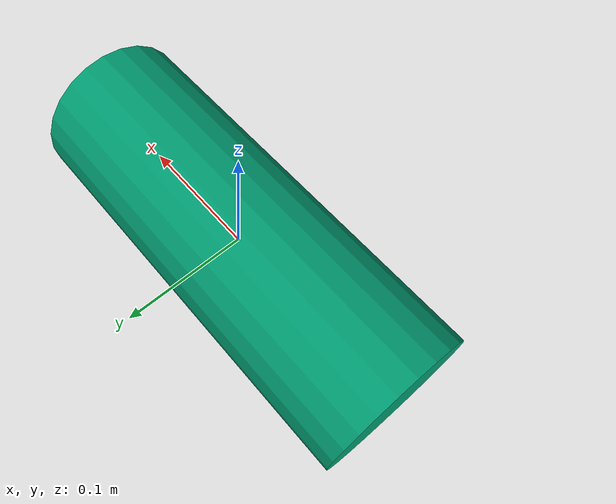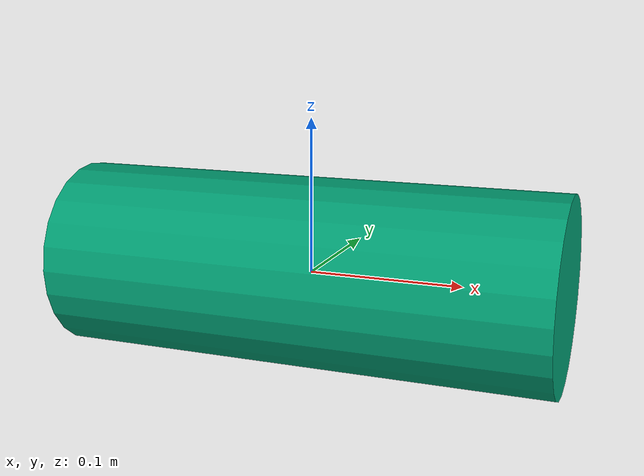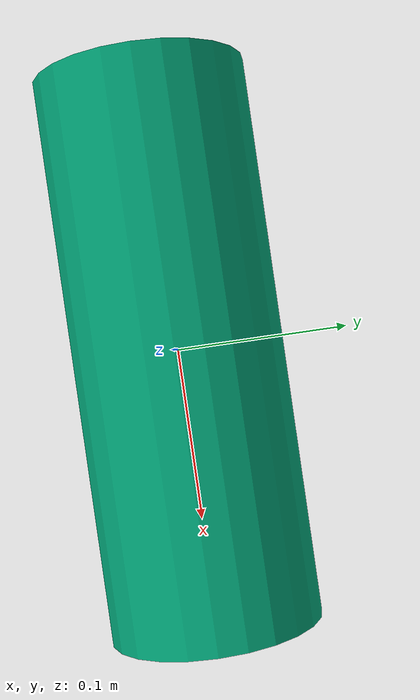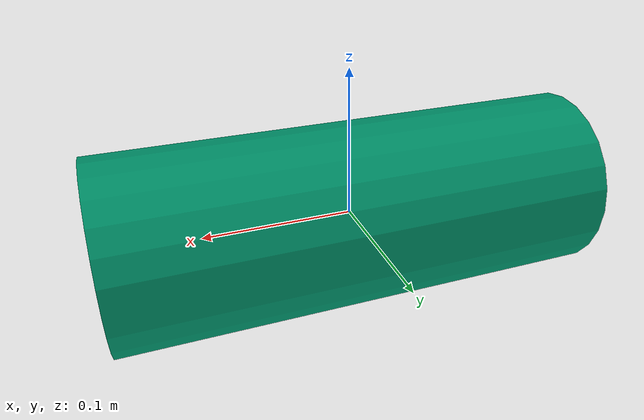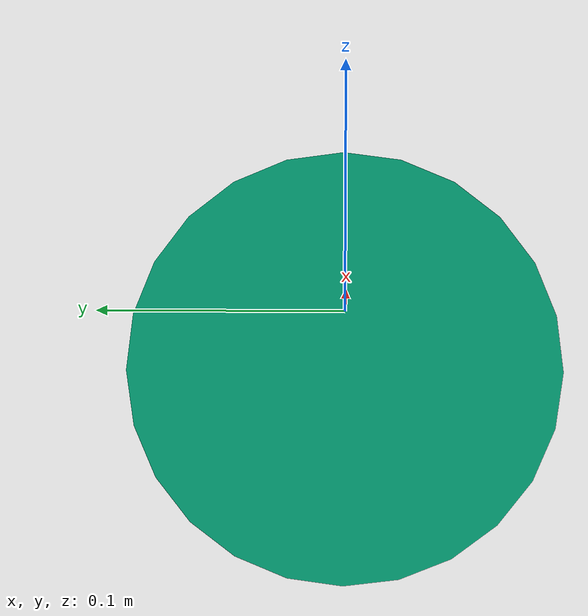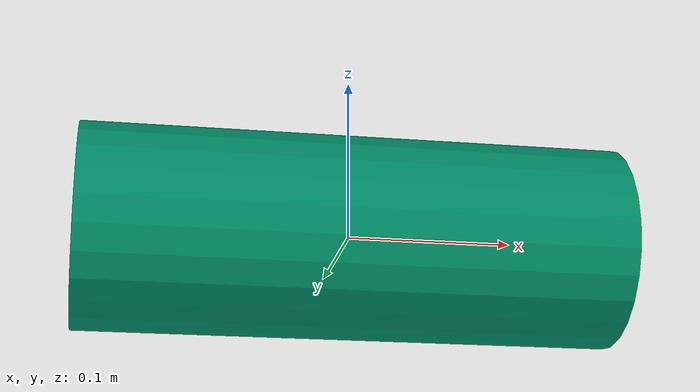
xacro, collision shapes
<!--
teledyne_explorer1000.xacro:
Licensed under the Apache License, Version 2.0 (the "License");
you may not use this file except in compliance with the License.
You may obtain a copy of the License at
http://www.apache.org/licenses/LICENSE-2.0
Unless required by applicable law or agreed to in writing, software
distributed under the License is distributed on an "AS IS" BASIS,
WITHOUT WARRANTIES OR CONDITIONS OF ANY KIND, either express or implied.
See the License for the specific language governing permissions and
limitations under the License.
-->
<?xml version="1.0"?>

<robot xmlns:xacro="http://www.ros.org/wiki/xacro" name="teledyne_explorer1000">

  <xacro:include filename="$(find teledyne_explorer1000_uuvsim_description)/urdf/teledyne_explorer1000.xacro"/>

  <link name="explorer1000_base_link"/>

  <link name="explorer1000_link">
    <inertial>
      <mass value="0.001"/>
      <origin xyz="0 0 0" rpy="0 0 0"/>
      <inertia ixx="0.000000017" ixy="0" ixz="0"
               iyy="0.000000017" iyz="0" izz="0.000000017"/>
    </inertial>
  </link>

  <joint name="explorer1000_base_joint" type="fixed">
    <origin xyz="0 0 0" rpy="0 0 0"/>
    <parent link="explorer1000_base_link"/>
    <child link="explorer1000_link"/>
  </joint>

  <xacro:teledyne_explorer1000_enu_macro namespace="explorer1000" parent_link="explorer1000_base_link">
    <origin xyz="0 0 0" rpy="0 ${0.5*pi} 0"/>
  </xacro:teledyne_explorer1000_enu_macro>

  <!-- Turn gravity (off) for now so that the (unpowered) robot doesn't sink like
       a rock.  Can remove this once the neutral buoyancy issue (#4) is resolved -->
  <gazebo reference="explorer1000/dvl_sonar0_link">
    <turnGravityOff>true</turnGravityOff>
  </gazebo>
  <gazebo reference="explorer1000/dvl_sonar1_link">
    <turnGravityOff>true</turnGravityOff>
  </gazebo>
  <gazebo reference="explorer1000/dvl_sonar2_link">
    <turnGravityOff>true</turnGravityOff>
  </gazebo>
  <gazebo reference="explorer1000/dvl_sonar3_link">
    <turnGravityOff>true</turnGravityOff>
  </gazebo>
  <gazebo reference="explorer1000_link">
    <turnGravityOff>true</turnGravityOff>
  </gazebo>
  <gazebo reference="explorer1000/dvl_link">
    <turnGravityOff>true</turnGravityOff>
  </gazebo>
</robot>

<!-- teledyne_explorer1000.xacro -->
<robot xmlns:xacro="http://www.ros.org/wiki/xacro">

  <!-- Generates a tiny "no-collision" cylinder for incorporation into a link
       that we do not want to collide with anything (e.g., individual DVL sonars) -->
  <xacro:macro name="no_collision">
    <collision>
      <geometry>
        <cylinder length="${0.000001}" radius="${0.000001}"/>
      </geometry>
      <origin xyz="0 0 0" rpy="0 ${0.5*pi} 0"/>
    </collision>
  </xacro:macro>

  <xacro:macro name="teledyne_explorer1000_macro" params="namespace parent_link *origin inertial_reference_frame">
    <xacro:explorer1000_plugin_macro
      namespace="${namespace}"
      suffix=""
      parent_link="${parent_link}"
      reference_frame="${inertial_reference_frame}"
      update_rate="12"
      topic="dvl"
      noise_sigma="0.018"
      noise_amplitude="0.018"
      scale="1">
      <xacro:insert_block name="origin"/>
    </xacro:explorer1000_plugin_macro>
  </xacro:macro>

  <!-- Generates an ENU Teledyne Explorer 1000m URDF model and attaches it to a parent link -->
  <xacro:macro name="teledyne_explorer1000_enu_macro" params="namespace parent_link *origin">
    <xacro:teledyne_explorer1000_macro
      namespace="${namespace}"
      parent_link="${parent_link}"
      inertial_reference_frame="world">
      <xacro:insert_block name="origin"/>
    </xacro:teledyne_explorer1000_macro>
  </xacro:macro>

  <!-- Generates an NED Teledyne Explorer 1000m URDF model and attaches it to a parent link -->
  <xacro:macro name="teledyne_explorer1000_ned_macro" params="namespace parent_link *origin">
    <xacro:teledyne_explorer1000_macro
      namespace="${namespace}"
      parent_link="${parent_link}"
      inertial_reference_frame="world_ned">
      <xacro:insert_block name="origin"/>
    </xacro:teledyne_explorer1000_macro>
  </xacro:macro>

  <!-- Generates a single ranging sonar for the DVL -->
  <xacro:macro name="explorer1000_single_sonar" params="namespace topic suffix index pitch yaw update_rate">
    <link name="${namespace}/dvl${suffix}_sonar${index}_link">
      <inertial>
        <mass value="0.001"/>
        <origin xyz="0 0 0" rpy="0 0 0"/>
        <inertia ixx="0.000000017" ixy="0" ixz="0" iyy="0.000000017" iyz="0" izz="0.000000017"/>
      </inertial>
      <xacro:no_collision/>
    </link>

    <joint name="${namespace}/dvl${suffix}_sonar${index}_joint" type="revolute">
      <origin xyz="0 0 0.1" rpy="0 ${pitch} ${yaw}"/>
      <parent link="${namespace}/dvl${suffix}_link"/>
      <child link="${namespace}/dvl${suffix}_sonar${index}_link"/>
      <limit upper="0" lower="0" effort="0" velocity="0"/>
      <axis xyz="1 0 0"/>
    </joint>

    <gazebo reference="${namespace}/dvl${suffix}_sonar${index}_link">
      <sensor type="ray" name="dvl${suffix}_sonar${index}">
        <pose>0 0 0 0 0 0</pose>
        <update_rate>${update_rate}</update_rate>
        <visualize>true</visualize>
        <ray>
          <scan>
            <horizontal>
              <samples>3</samples>
              <resolution>1</resolution>
              <min_angle>-0.019</min_angle>
              <max_angle>0.019</max_angle>
            </horizontal>
            <vertical>
              <samples>3</samples>
              <resolution>1</resolution>
              <min_angle>-0.019</min_angle>
              <max_angle>0.019</max_angle>
            </vertical>
          </scan>
          <range>
            <min>0.5</min>
            <max>81</max>
            <resolution>0.01</resolution>
          </range>
        </ray>

        <plugin filename="libgazebo_ros_range.so" name="dvl${suffix}_sonar${index}">
          <gaussianNoise>0.005</gaussianNoise>
          <alwaysOn>true</alwaysOn>
          <updateRate>${update_rate}</updateRate>
          <topicName>${namespace}/${topic}${suffix}_sonar${index}</topicName>
          <frameName>${namespace}/dvl${suffix}_sonar${index}_link</frameName>
          <fov>0.038</fov>
          <radiation>ultrasound</radiation>
        </plugin>
      </sensor>
    </gazebo>
  </xacro:macro>

  <!-- Generates the DVL URDF model and plugin -->
  <xacro:macro name="explorer1000_plugin_macro"
    params="namespace suffix parent_link topic scale *origin update_rate
    reference_frame noise_sigma noise_amplitude">
    <link name="${namespace}/dvl${suffix}_link">
      <inertial>
        <mass value="0.8"/>
        <origin xyz="0 0 0" rpy="0 0 0"/>
        <!-- Different mounting orientation than other DVLs -->
        <inertia ixx="0.0015376" ixy="0" ixz="0" iyy="0.007853866666667" iyz="0" izz="0.007853866666667"/>
      </inertial>
      <visual>
        <geometry>
          <mesh filename="package://dave_sensor_models/models/teledyne_explorer1000/meshes/MarineExplorer.dae"/>
        </geometry>
        <origin xyz="0 0 0" rpy="0 0 1.5707963267948966"/>
      </visual>
      <collision>
        <geometry>
          <cylinder length="0.326" radius="0.062"/>
        </geometry>
        <origin xyz="0 0 0" rpy="0 0 0"/>
      </collision>
    </link>

    <joint name="${namespace}/dvl${suffix}_joint" type="revolute">
      <xacro:insert_block name="origin"/>
      <parent link="${parent_link}"/>
      <child link="${namespace}/dvl${suffix}_link"/>
      <limit upper="0" lower="0" effort="0" velocity="0"/>
      <axis xyz="1 0 0"/>
    </joint>

    <xacro:explorer1000_single_sonar
      namespace="${namespace}" topic="${topic}" suffix=""
      index="0" pitch="-0.52" yaw="0.0" update_rate="${update_rate}">
    </xacro:explorer1000_single_sonar>

    <xacro:explorer1000_single_sonar
      namespace="${namespace}" topic="${topic}" suffix=""
      index="1" pitch="0" yaw="0.52" update_rate="${update_rate}">
    </xacro:explorer1000_single_sonar>

    <xacro:explorer1000_single_sonar
      namespace="${namespace}" topic="${topic}" suffix=""
      index="2" pitch="0.52" yaw="0.0" update_rate="${update_rate}">
    </xacro:explorer1000_single_sonar>

    <xacro:explorer1000_single_sonar
      namespace="${namespace}" topic="${topic}" suffix=""
      index="3" pitch="0.0" yaw="-0.52" update_rate="${update_rate}">
    </xacro:explorer1000_single_sonar>

    <gazebo>
      <plugin filename="libuuv_gazebo_ros_dvl_plugin.so" name="libuuv_gazebo_dvl${suffix}_plugin">
        <robot_namespace>${namespace}</robot_namespace>
        <link_name>${parent_link}</link_name>
        <sensor_topic>${topic}${suffix}</sensor_topic>
        <update_rate>${update_rate}</update_rate>
        <noise_sigma>${noise_sigma}</noise_sigma>
        <noise_amplitude>${noise_amplitude}</noise_amplitude>
        <enable_gazebo_messages>false</enable_gazebo_messages>
        <enable_local_ned_frame>false</enable_local_ned_frame>
        <static_reference_frame>${reference_frame}</static_reference_frame>
        <!-- Declaring the beams -->
        <beam_link_name_0>${namespace}/dvl_sonar0_link</beam_link_name_0>
        <beam_link_name_1>${namespace}/dvl_sonar1_link</beam_link_name_1>
        <beam_link_name_2>${namespace}/dvl_sonar2_link</beam_link_name_2>
        <beam_link_name_3>${namespace}/dvl_sonar3_link</beam_link_name_3>
        <!-- Declaring the beam output topics -->
        <beam_topic_0>${topic}${suffix}_sonar0</beam_topic_0>
        <beam_topic_1>${topic}${suffix}_sonar1</beam_topic_1>
        <beam_topic_2>${topic}${suffix}_sonar2</beam_topic_2>
        <beam_topic_3>${topic}${suffix}_sonar3</beam_topic_3>
      </plugin>
    </gazebo>
  </xacro:macro>
</robot>
